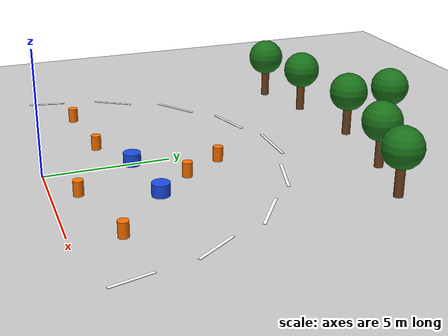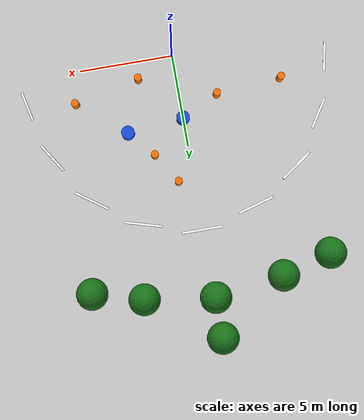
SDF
<sdf version="1.8">
 <world name="pioneer_world">
  <model name="ground_plane">
   <static>true</static>
   <link name="link">
    <collision name="collision"><geometry><plane><normal>0 0 1</normal></plane></geometry></collision>
    <visual name="visual">
     <geometry><plane><normal>0 0 1</normal><size>100 100</size></plane></geometry>
     <material>
      <ambient>0.8 0.8 0.8 1</ambient>
      <diffuse>0.8 0.8 0.8 1</diffuse>
      <specular>0.8 0.8 0.8 1</specular>
     </material>
    </visual>
   </link>
  </model>
  <model name="oval_line_1">
   <static>true</static>
   <pose>0 9.5 0.02 0 0 0</pose>
   <link name="link">
    <visual name="visual">
     <geometry><box><size>2.2 0.12 0.02</size></box></geometry>
     <material><ambient>1 1 1 1</ambient><diffuse>1 1 1 1</diffuse><specular>0.2 0.2 0.2 1</specular></material>
    </visual>
   </link>
  </model>
  <model name="oval_line_2">
   <static>true</static>
   <pose>3.0 8.7 0.02 0 0 -0.28</pose>
   <link name="link">
    <visual name="visual">
     <geometry><box><size>2.0 0.12 0.02</size></box></geometry>
     <material><ambient>1 1 1 1</ambient><diffuse>1 1 1 1</diffuse><specular>0.2 0.2 0.2 1</specular></material>
    </visual>
   </link>
  </model>
  <model name="oval_line_3">
   <static>true</static>
   <pose>5.5 7.0 0.02 0 0 -0.62</pose>
   <link name="link">
    <visual name="visual">
     <geometry><box><size>2.0 0.12 0.02</size></box></geometry>
     <material><ambient>1 1 1 1</ambient><diffuse>1 1 1 1</diffuse><specular>0.2 0.2 0.2 1</specular></material>
    </visual>
   </link>
  </model>
  <model name="oval_line_4">
   <static>true</static>
   <pose>7.2 4.4 0.02 0 0 -1.0</pose>
   <link name="link">
    <visual name="visual">
     <geometry><box><size>1.8 0.12 0.02</size></box></geometry>
     <material><ambient>1 1 1 1</ambient><diffuse>1 1 1 1</diffuse><specular>0.2 0.2 0.2 1</specular></material>
    </visual>
   </link>
  </model>
  <model name="oval_line_5">
   <static>true</static>
   <pose>8.1 1.4 0.02 0 0 -1.35</pose>
   <link name="link">
    <visual name="visual">
     <geometry><box><size>1.6 0.12 0.02</size></box></geometry>
     <material><ambient>1 1 1 1</ambient><diffuse>1 1 1 1</diffuse><specular>0.2 0.2 0.2 1</specular></material>
    </visual>
   </link>
  </model>
  <model name="oval_line_15">
   <static>true</static>
   <pose>-8.1 1.4 0.02 0 0 1.35</pose>
   <link name="link">
    <visual name="visual">
     <geometry><box><size>1.6 0.12 0.02</size></box></geometry>
     <material><ambient>1 1 1 1</ambient><diffuse>1 1 1 1</diffuse><specular>0.2 0.2 0.2 1</specular></material>
    </visual>
   </link>
  </model>
  <model name="oval_line_16">
   <static>true</static>
   <pose>-7.2 4.4 0.02 0 0 1.0</pose>
   <link name="link">
    <visual name="visual">
     <geometry><box><size>1.8 0.12 0.02</size></box></geometry>
     <material><ambient>1 1 1 1</ambient><diffuse>1 1 1 1</diffuse><specular>0.2 0.2 0.2 1</specular></material>
    </visual>
   </link>
  </model>
  <model name="oval_line_17">
   <static>true</static>
   <pose>-5.5 7.0 0.02 0 0 0.62</pose>
   <link name="link">
    <visual name="visual">
     <geometry><box><size>2.0 0.12 0.02</size></box></geometry>
     <material><ambient>1 1 1 1</ambient><diffuse>1 1 1 1</diffuse><specular>0.2 0.2 0.2 1</specular></material>
    </visual>
   </link>
  </model>
  <model name="oval_line_18">
   <static>true</static>
   <pose>-3.0 8.7 0.02 0 0 0.28</pose>
   <link name="link">
    <visual name="visual">
     <geometry><box><size>2.0 0.12 0.02</size></box></geometry>
     <material><ambient>1 1 1 1</ambient><diffuse>1 1 1 1</diffuse><specular>0.2 0.2 0.2 1</specular></material>
    </visual>
   </link>
  </model>
  <model name="cone_1">
   <static>true</static>
   <pose>2 1 0.3 0 0 0</pose>
   <link name="link">
    <visual name="visual">
     <geometry><cylinder><radius>0.2</radius><length>0.6</length></cylinder></geometry>
     <material>
      <ambient>1.0 0.45 0.0 1</ambient>
      <diffuse>1.0 0.45 0.0 1</diffuse>
      <specular>0.2 0.2 0.2 1</specular>
     </material>
    </visual>
    <collision name="collision">
     <geometry><cylinder><radius>0.2</radius><length>0.6</length></cylinder></geometry>
    </collision>
   </link>
  </model>
  <model name="cone_2">
   <static>true</static>
   <pose>-2 2.5 0.3 0 0 0</pose>
   <link name="link">
    <visual name="visual">
     <geometry><cylinder><radius>0.2</radius><length>0.6</length></cylinder></geometry>
     <material>
      <ambient>1.0 0.45 0.0 1</ambient>
      <diffuse>1.0 0.45 0.0 1</diffuse>
      <specular>0.2 0.2 0.2 1</specular>
     </material>
    </visual>
    <collision name="collision">
     <geometry><cylinder><radius>0.2</radius><length>0.6</length></cylinder></geometry>
    </collision>
   </link>
  </model>
  <model name="cone_5">
   <static>true</static>
   <pose>1.8 5.2 0.3 0 0 0</pose>
   <link name="link">
    <visual name="visual">
     <geometry><cylinder><radius>0.2</radius><length>0.6</length></cylinder></geometry>
     <material>
      <ambient>1.0 0.45 0.0 1</ambient>
      <diffuse>1.0 0.45 0.0 1</diffuse>
      <specular>0.2 0.2 0.2 1</specular>
     </material>
    </visual>
    <collision name="collision">
     <geometry><cylinder><radius>0.2</radius><length>0.6</length></cylinder></geometry>
    </collision>
   </link>
  </model>
  <model name="cone_7">
   <static>true</static>
   <pose>5.5 1.8 0.3 0 0 0</pose>
   <link name="link">
    <visual name="visual">
     <geometry><cylinder><radius>0.2</radius><length>0.6</length></cylinder></geometry>
     <material>
      <ambient>1.0 0.45 0.0 1</ambient>
      <diffuse>1.0 0.45 0.0 1</diffuse>
      <specular>0.2 0.2 0.2 1</specular>
     </material>
    </visual>
    <collision name="collision">
     <geometry><cylinder><radius>0.2</radius><length>0.6</length></cylinder></geometry>
    </collision>
   </link>
  </model>
  <model name="cone_8">
   <static>true</static>
   <pose>-5.5 2.2 0.3 0 0 0</pose>
   <link name="link">
    <visual name="visual">
     <geometry><cylinder><radius>0.2</radius><length>0.6</length></cylinder></geometry>
     <material>
      <ambient>1.0 0.45 0.0 1</ambient>
      <diffuse>1.0 0.45 0.0 1</diffuse>
      <specular>0.2 0.2 0.2 1</specular>
     </material>
    </visual>
    <collision name="collision">
     <geometry><cylinder><radius>0.2</radius><length>0.6</length></cylinder></geometry>
    </collision>
   </link>
  </model>
  <model name="cone_11">
   <static>true</static>
   <pose>0.8 6.8 0.3 0 0 0</pose>
   <link name="link">
    <visual name="visual">
     <geometry><cylinder><radius>0.2</radius><length>0.6</length></cylinder></geometry>
     <material>
      <ambient>1.0 0.45 0.0 1</ambient>
      <diffuse>1.0 0.45 0.0 1</diffuse>
      <specular>0.2 0.2 0.2 1</specular>
     </material>
    </visual>
    <collision name="collision">
     <geometry><cylinder><radius>0.2</radius><length>0.6</length></cylinder></geometry>
    </collision>
   </link>
  </model>
  <model name="bucket_1">
   <static>true</static>
   <pose>0 3.5 0.25 0 0 0</pose>
   <link name="link">
    <visual name="visual">
     <geometry><cylinder><radius>0.35</radius><length>0.5</length></cylinder></geometry>
     <material>
      <ambient>0.1 0.3 0.9 1</ambient>
      <diffuse>0.1 0.3 0.9 1</diffuse>
      <specular>0.2 0.2 0.2 1</specular>
     </material>
    </visual>
    <collision name="collision">
     <geometry><cylinder><radius>0.35</radius><length>0.5</length></cylinder></geometry>
    </collision>
   </link>
  </model>
  <model name="bucket_4">
   <static>true</static>
   <pose>3.0 3.8 0.25 0 0 0</pose>
   <link name="link">
    <visual name="visual">
     <geometry><cylinder><radius>0.35</radius><length>0.5</length></cylinder></geometry>
     <material>
      <ambient>0.1 0.3 0.9 1</ambient>
      <diffuse>0.1 0.3 0.9 1</diffuse>
      <specular>0.2 0.2 0.2 1</specular>
     </material>
    </visual>
    <collision name="collision">
     <geometry><cylinder><radius>0.35</radius><length>0.5</length></cylinder></geometry>
    </collision>
   </link>
  </model>
  <model name="tree_1">
   <static>true</static>
   <pose>-3.5 12.5 0 0 0 0</pose>
   <link name="link">
    <visual name="trunk_visual">
     <pose>0 0 0.75 0 0 0</pose>
     <geometry><cylinder><radius>0.18</radius><length>1.5</length></cylinder></geometry>
     <material><ambient>0.45 0.26 0.12 1</ambient><diffuse>0.45 0.26 0.12 1</diffuse></material>
    </visual>
    <visual name="leaves_visual">
     <pose>0 0 1.9 0 0 0</pose>
     <geometry><sphere><radius>0.8</radius></sphere></geometry>
     <material><ambient>0.1 0.45 0.1 1</ambient><diffuse>0.1 0.45 0.1 1</diffuse></material>
    </visual>
    <collision name="collision">
     <pose>0 0 1.2 0 0 0</pose>
     <geometry><cylinder><radius>0.5</radius><length>2.4</length></cylinder></geometry>
    </collision>
   </link>
  </model>
  <model name="tree_2">
   <static>true</static>
   <pose>0 13 0 0 0 0</pose>
   <link name="link">
    <visual name="trunk_visual">
     <pose>0 0 0.75 0 0 0</pose>
     <geometry><cylinder><radius>0.18</radius><length>1.5</length></cylinder></geometry>
     <material><ambient>0.45 0.26 0.12 1</ambient><diffuse>0.45 0.26 0.12 1</diffuse></material>
    </visual>
    <visual name="leaves_visual">
     <pose>0 0 1.9 0 0 0</pose>
     <geometry><sphere><radius>0.8</radius></sphere></geometry>
     <material><ambient>0.1 0.45 0.1 1</ambient><diffuse>0.1 0.45 0.1 1</diffuse></material>
    </visual>
    <collision name="collision">
     <pose>0 0 1.2 0 0 0</pose>
     <geometry><cylinder><radius>0.5</radius><length>2.4</length></cylinder></geometry>
    </collision>
   </link>
  </model>
  <model name="tree_3">
   <static>true</static>
   <pose>3.5 12.5 0 0 0 0</pose>
   <link name="link">
    <visual name="trunk_visual">
     <pose>0 0 0.75 0 0 0</pose>
     <geometry><cylinder><radius>0.18</radius><length>1.5</length></cylinder></geometry>
     <material><ambient>0.45 0.26 0.12 1</ambient><diffuse>0.45 0.26 0.12 1</diffuse></material>
    </visual>
    <visual name="leaves_visual">
     <pose>0 0 1.9 0 0 0</pose>
     <geometry><sphere><radius>0.8</radius></sphere></geometry>
     <material><ambient>0.1 0.45 0.1 1</ambient><diffuse>0.1 0.45 0.1 1</diffuse></material>
    </visual>
    <collision name="collision">
     <pose>0 0 1.2 0 0 0</pose>
     <geometry><cylinder><radius>0.5</radius><length>2.4</length></cylinder></geometry>
    </collision>
   </link>
  </model>
  <model name="tree_4">
   <static>true</static>
   <pose>-6 11.8 0 0 0 0</pose>
   <link name="link">
    <visual name="trunk_visual">
     <pose>0 0 0.75 0 0 0</pose>
     <geometry><cylinder><radius>0.18</radius><length>1.5</length></cylinder></geometry>
     <material><ambient>0.45 0.26 0.12 1</ambient><diffuse>0.45 0.26 0.12 1</diffuse></material>
    </visual>
    <visual name="leaves_visual">
     <pose>0 0 1.9 0 0 0</pose>
     <geometry><sphere><radius>0.8</radius></sphere></geometry>
     <material><ambient>0.1 0.45 0.1 1</ambient><diffuse>0.1 0.45 0.1 1</diffuse></material>
    </visual>
    <collision name="collision">
     <pose>0 0 1.2 0 0 0</pose>
     <geometry><cylinder><radius>0.5</radius><length>2.4</length></cylinder></geometry>
    </collision>
   </link>
  </model>
  <model name="tree_5">
   <static>true</static>
   <pose>6 11.8 0 0 0 0</pose>
   <link name="link">
    <visual name="trunk_visual">
     <pose>0 0 0.75 0 0 0</pose>
     <geometry><cylinder><radius>0.18</radius><length>1.5</length></cylinder></geometry>
     <material><ambient>0.45 0.26 0.12 1</ambient><diffuse>0.45 0.26 0.12 1</diffuse></material>
    </visual>
    <visual name="leaves_visual">
     <pose>0 0 1.9 0 0 0</pose>
     <geometry><sphere><radius>0.8</radius></sphere></geometry>
     <material><ambient>0.1 0.45 0.1 1</ambient><diffuse>0.1 0.45 0.1 1</diffuse></material>
    </visual>
    <collision name="collision">
     <pose>0 0 1.2 0 0 0</pose>
     <geometry><cylinder><radius>0.5</radius><length>2.4</length></cylinder></geometry>
    </collision>
   </link>
  </model>
  <model name="tree_6">
   <static>true</static>
   <pose>0 15 0 0 0 0</pose>
   <link name="link">
    <visual name="trunk_visual">
     <pose>0 0 0.75 0 0 0</pose>
     <geometry><cylinder><radius>0.18</radius><length>1.5</length></cylinder></geometry>
     <material><ambient>0.45 0.26 0.12 1</ambient><diffuse>0.45 0.26 0.12 1</diffuse></material>
    </visual>
    <visual name="leaves_visual">
     <pose>0 0 1.9 0 0 0</pose>
     <geometry><sphere><radius>0.8</radius></sphere></geometry>
     <material><ambient>0.1 0.45 0.1 1</ambient><diffuse>0.1 0.45 0.1 1</diffuse></material>
    </visual>
    <collision name="collision">
     <pose>0 0 1.2 0 0 0</pose>
     <geometry><cylinder><radius>0.5</radius><length>2.4</length></cylinder></geometry>
    </collision>
   </link>
  </model>
 </world>
</sdf>
